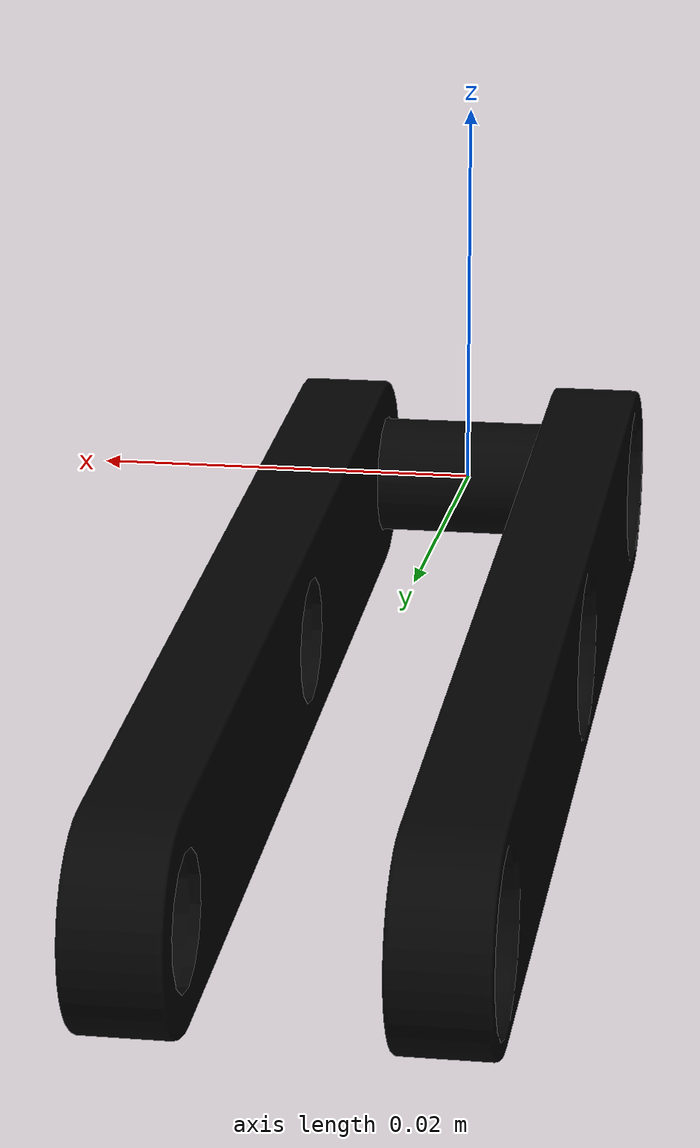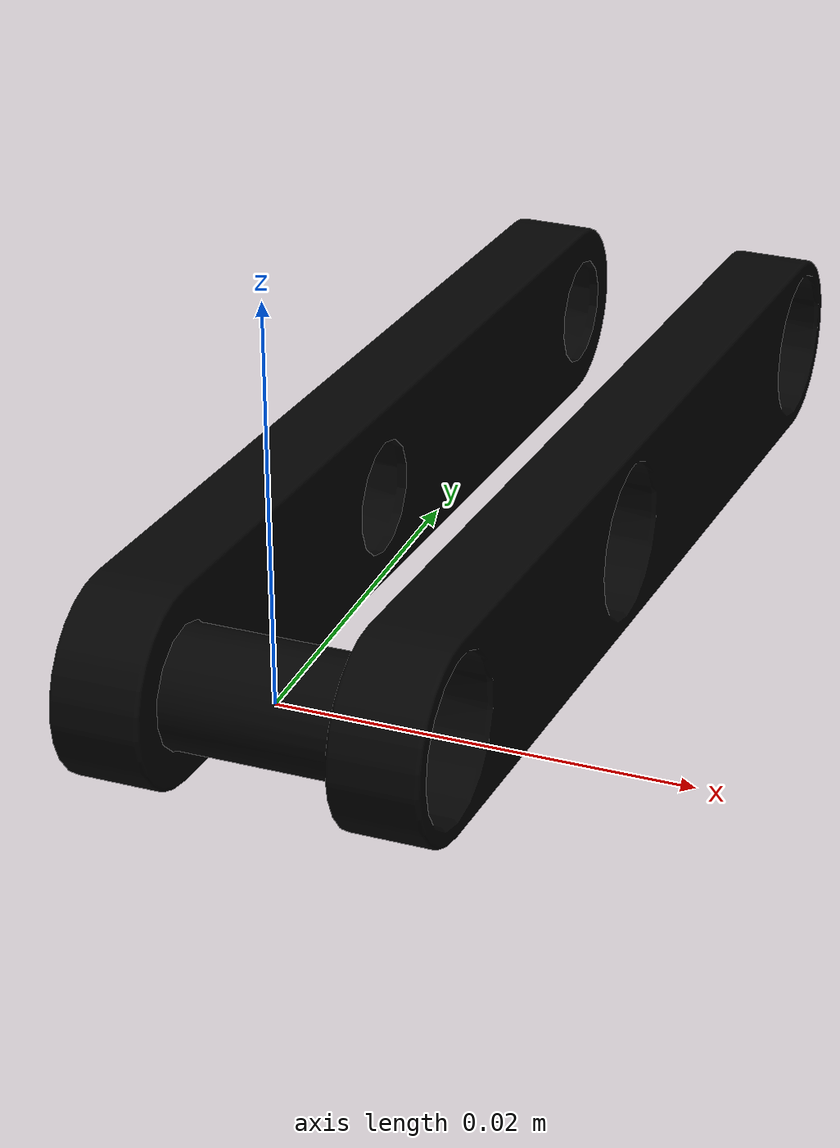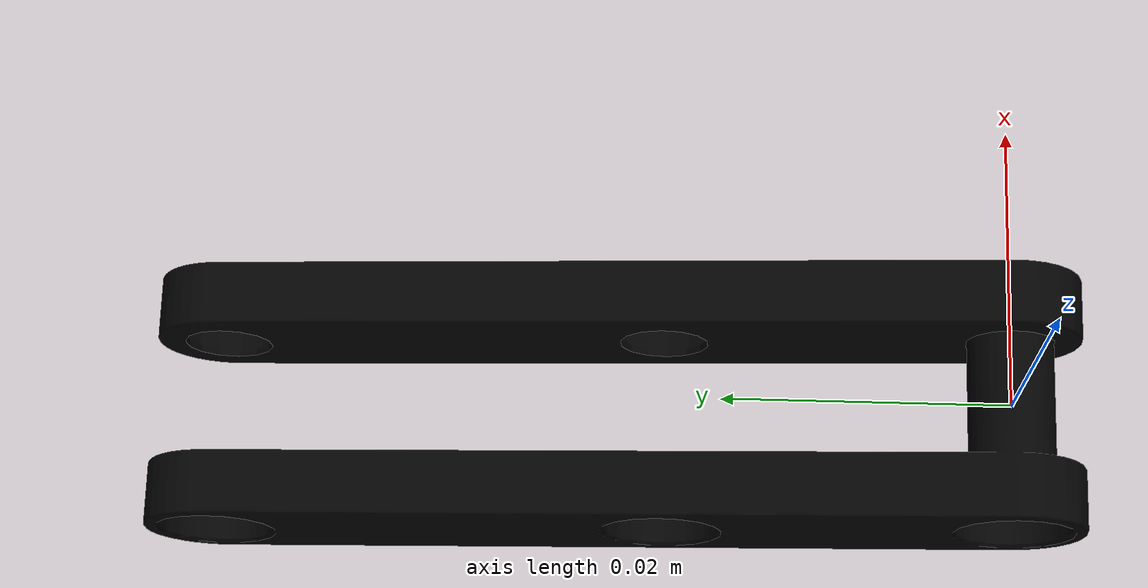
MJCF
<mujoco model="link_1">
  <default>
    <default class="visual">
      <geom group="2" type="mesh" contype="0" conaffinity="0"/>
    </default>
    <default class="collision">
      <geom group="3" type="mesh"/>
    </default>
  </default>
  <asset>
    <material name="black_metal" specular="0.5" shininess="0.49" rgba="0.010000 0.010000 0.010000 1.000000"/>
    <mesh file="link_1.obj"/>
    <mesh file="link_1_collision_0.obj"/>
    <mesh file="link_1_collision_1.obj"/>
    <mesh file="link_1_collision_2.obj"/>
  </asset>
  <worldbody>
    <body name="link_1">
      <geom material="black_metal" mesh="link_1" class="visual"/>
      <geom mesh="link_1_collision_0" rgba="0.1075753610075243 0.1863543711775555 0.6512759273030437 1" class="collision"/>
      <geom mesh="link_1_collision_1" rgba="0.4512188228027494 0.3937872411922637 0.48039119737259484 1" class="collision"/>
      <geom mesh="link_1_collision_2" rgba="0.507450584747941 0.6684486345076416 0.8924106754270972 1" class="collision"/>
    </body>
  </worldbody>
</mujoco>
